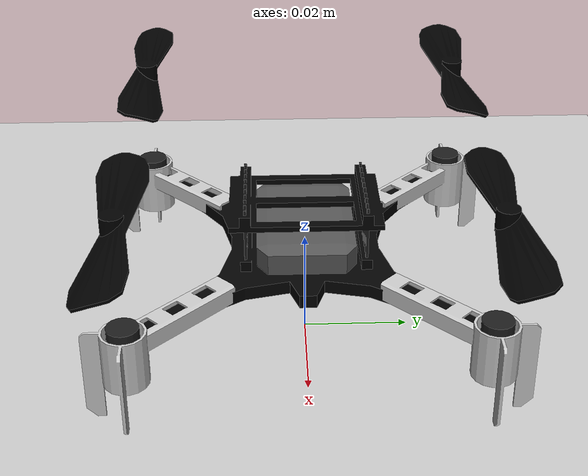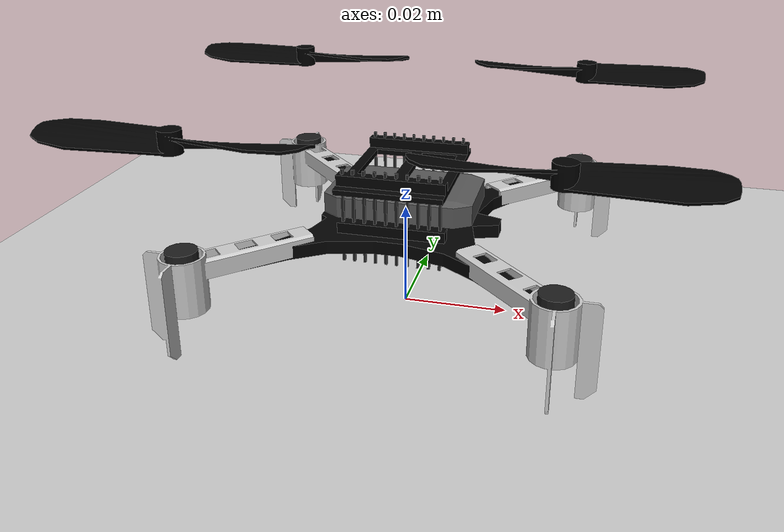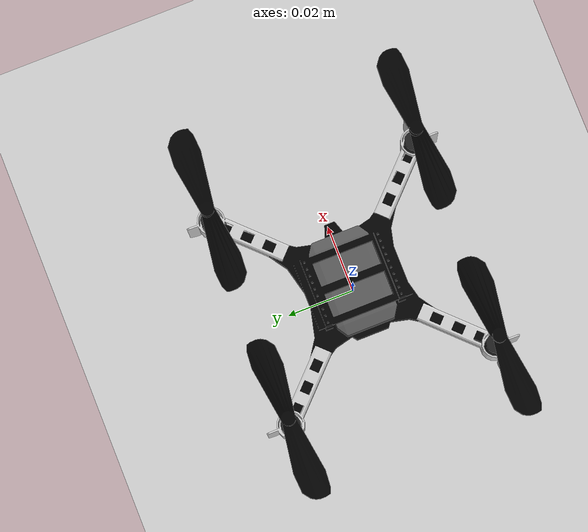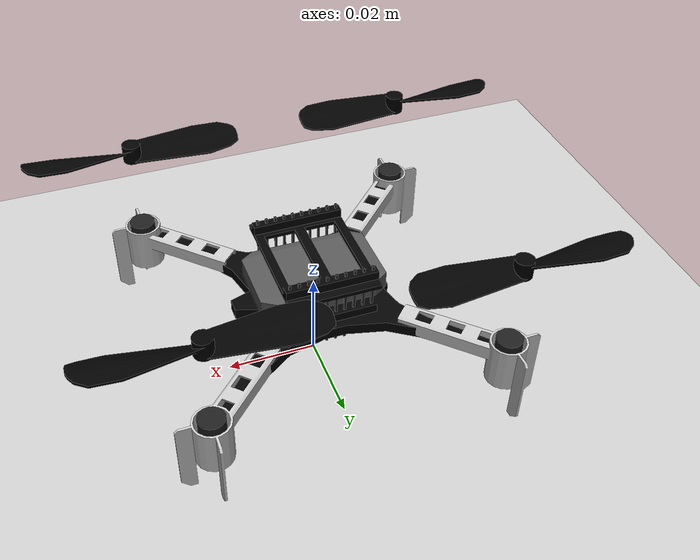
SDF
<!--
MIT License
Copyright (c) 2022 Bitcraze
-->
<?xml version="1.0"?>

<sdf version="1.6">
  <world name="crazyflie_world">
    <physics name="1ms" type="ignored">
      <max_step_size>0.001</max_step_size>
      <real_time_factor>1.0</real_time_factor>
    </physics>
    <plugin
      filename="gz-sim-physics-system"
      name="gz::sim::systems::Physics">
    </plugin>
    <plugin
      filename="gz-sim-user-commands-system"
      name="gz::sim::systems::UserCommands">
    </plugin>
    <plugin
      filename="gz-sim-scene-broadcaster-system"
      name="gz::sim::systems::SceneBroadcaster">
    </plugin>
    <plugin
      filename="gz-sim-contact-system"
      name="gz::sim::systems::Contact">
    </plugin>
    <plugin filename="gz-sim-imu-system"
      name="gz::sim::systems::Imu">
    </plugin>

    <light type="directional" name="sun">
      <cast_shadows>true</cast_shadows>
      <pose>0 0 10 0 0 0</pose>
      <diffuse>0.8 0.8 0.8 1</diffuse>
      <specular>0.2 0.2 0.2 1</specular>
      <attenuation>
        <range>1000</range>
        <constant>0.9</constant>
        <linear>0.01</linear>
        <quadratic>0.001</quadratic>
      </attenuation>
      <direction>-0.5 0.1 -0.9</direction>
    </light>

    <model name="ground_plane">
      <static>true</static>
      <link name="link">
        <collision name="collision">
          <geometry>
            <plane>
              <normal>0 0 1</normal>
              <size>100 100</size>
            </plane>
          </geometry>
        </collision>
        <visual name="visual">
          <geometry>
            <plane>
              <normal>0 0 1</normal>
              <size>100 100</size>
            </plane>
          </geometry>
          <material>
            <ambient>0.8 0.8 0.8 1</ambient>
            <diffuse>0.8 0.8 0.8 1</diffuse>
            <specular>0.8 0.8 0.8 1</specular>
          </material>
        </visual>
      </link>
    </model>

    <include>
      <uri>model://crazyflie</uri>
      <name>crazyflie</name>
      <pose>0 0 0.02 0 0 0</pose>

      <plugin
        filename="gz-sim-multicopter-control-system"
        name="gz::sim::systems::MulticopterVelocityControl">
        <robotNamespace>crazyflie</robotNamespace>
        <commandSubTopic>gazebo/command/twist</commandSubTopic>
        <enableSubTopic>enable</enableSubTopic>
        <comLinkName>crazyflie/body</comLinkName>
        <velocityGain>0.03 0.03 0.03</velocityGain>
        <attitudeGain>0.02 0.02 0.02</attitudeGain>
        <angularRateGain>0.005 0.005 0.005</angularRateGain>
        <maximumLinearAcceleration>2 2 2</maximumLinearAcceleration>

        <rotorConfiguration>
          <rotor>
            <jointName>crazyflie/m1_joint</jointName>
            <forceConstant>1.28192e-08</forceConstant>
            <momentConstant>0.016</momentConstant>
            <direction>1</direction>
          </rotor>
          <rotor>
            <jointName>crazyflie/m2_joint</jointName>
            <forceConstant>1.28192e-08</forceConstant>
            <momentConstant>0.016</momentConstant>
            <direction>1</direction>
          </rotor>
          <rotor>
            <jointName>crazyflie/m3_joint</jointName>
            <forceConstant>1.28192e-08</forceConstant>
            <momentConstant>0.016</momentConstant>
            <direction>-1</direction>
          </rotor>
          <rotor>
            <jointName>crazyflie/m4_joint</jointName>
            <forceConstant>1.28192e-08</forceConstant>
            <momentConstant>0.016</momentConstant>
            <direction>-1</direction>
          </rotor>
        </rotorConfiguration>
      </plugin>
    </include>
  </world>
</sdf>

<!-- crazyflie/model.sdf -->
<sdf version="1.8">
  <model name="crazyflie">
    <pose>0 0 0.0 0 0 3.14</pose>
    <link name="crazyflie/body">
      <inertial>
        <pose>0 0 0 0 0 0</pose>
        <mass>0.025</mass>
        <inertia>
          <ixx>0.000016572</ixx>
          <ixy>0.00</ixy>
          <ixz>0.00</ixz>
          <iyy>0.000016656</iyy>
          <iyz>0.00000</iyz>
          <izz>0.000029262</izz>
        </inertia>
      </inertial>
      <collision name="crazyflie/body_collision">
        <pose>0 0 0 0 0 0</pose>
        <geometry>
          <box>
            <size>0.10 0.10 0.03</size>
          </box>
        </geometry>
      </collision>
      <visual name="crazyflie/body_visual">
        <pose>0 0 0 0 0 0</pose>
        <geometry>
          <mesh>
            <scale>1 1 1</scale>
            <uri>../../../meshes/collada_files/cf2_assembly.dae</uri>
          </mesh>
        </geometry>
      </visual>
      <sensor name="imu_sensor" type="imu">
        <pose degrees="true">0 0 0 180 0 0</pose>
        <always_on>1</always_on>
        <update_rate>1000.0</update_rate>
      </sensor>
    </link>
    <link name="crazyflie/m1_prop">
      <pose>0.031 -0.031 0.021 0 0 0</pose>
      <inertial>
        <pose>0 0 0 0 0 0</pose>
        <mass>0.0008</mass>
        <inertia>
          <ixx>8.33333E-09</ixx>
          <iyy>1.08333E-07</iyy>
          <izz>1.13333E-07</izz>
          <ixy>0</ixy>
          <ixz>0</ixz>
          <iyz>0</iyz>
        </inertia>
      </inertial>
      <collision name="collision">
        <pose>0 0 0 0 0 0</pose>
        <geometry>
          <mesh>
            <scale>1 1 1</scale>
            <uri>../../../meshes/collada_files/ccw_prop.dae</uri>
          </mesh>
        </geometry>
      </collision>
      <visual name="crazyflie/m1_visual">
        <pose>0 0 0 0 0 0</pose>
        <geometry>
          <mesh>
            <scale>1 1 1</scale>
            <uri>../../../meshes/collada_files/ccw_prop.dae</uri>
          </mesh>
        </geometry>
      </visual>
    </link>
    <link name="crazyflie/m2_prop">
      <pose>-0.031 0.031 0.021 0 0 0</pose>
      <inertial>
        <pose>0 0 0 0 -0 0</pose>
        <mass>0.0008</mass>
        <inertia>
          <ixx>8.33333E-09</ixx>
          <iyy>1.08333E-07</iyy>
          <izz>1.13333E-07</izz>
          <ixy>0</ixy>
          <ixz>0</ixz>
          <iyz>0</iyz>
        </inertia>
      </inertial>
      <collision name="collision">
        <pose>0 0 0 0 0 0</pose>
        <geometry>
          <mesh>
            <scale>1 1 1</scale>
            <uri>../../../meshes/collada_files/cw_prop.dae</uri>
          </mesh>
        </geometry>
      </collision>
      <visual name="crazyflie/m2_visual">
        <pose>0 0 0 0 0 0</pose>
        <geometry>
          <mesh>
            <scale>1 1 1</scale>
            <uri>../../../meshes/collada_files/cw_prop.dae</uri>
          </mesh>
        </geometry>
      </visual>
    </link>
    <link name="crazyflie/m3_prop">
      <pose>0.031 0.031 0.021 0 0 0</pose>
      <inertial>
        <pose>0 0 0 0 0 0</pose>
        <mass>0.0008</mass>
        <inertia>
          <ixx>8.33333E-09</ixx>
          <iyy>1.08333E-07</iyy>
          <izz>1.13333E-07</izz>
          <ixy>0</ixy>
          <ixz>0</ixz>
          <iyz>0</iyz>
        </inertia>
      </inertial>
      <collision name="collision">
        <pose>0 0 0 0 0 0</pose>
        <geometry>
          <mesh>
            <scale>1 1 1</scale>
            <uri>../../../meshes/collada_files/ccw_prop.dae</uri>
          </mesh>
        </geometry>
      </collision>
      <visual name="crazyflie/m3_visual">
        <pose>0 0 0 0 0 0</pose>
        <geometry>
          <mesh>
            <scale>1 1 1</scale>
            <uri>../../../meshes/collada_files/ccw_prop.dae</uri>
          </mesh>
        </geometry>
      </visual>
    </link>
    <link name="crazyflie/m4_prop">
      <pose>-0.031 -0.031 0.021 0 0 0</pose>
      <inertial>
        <pose>0 0 0 0 0 0</pose>
        <mass>0.0008</mass>
        <inertia>
          <ixx>8.33333E-09</ixx>
          <iyy>1.08333E-07</iyy>
          <izz>1.13333E-07</izz>
          <ixy>0</ixy>
          <ixz>0</ixz>
          <iyz>0</iyz>
        </inertia>
      </inertial>
      <collision name="collision">
        <pose>0 0 0 0 0 0</pose>
        <geometry>
          <mesh>
            <scale>1 1 1</scale>
            <uri>../../../meshes/collada_files/cw_prop.dae</uri>
          </mesh>
        </geometry>
      </collision>
      <visual name="crazyflie/m4_visual">
        <pose>0 0 0 0 0 0</pose>
        <geometry>
          <mesh>
            <scale>1 1 1</scale>
            <uri>../../../meshes/collada_files/cw_prop.dae</uri>
          </mesh>
        </geometry>
      </visual>
    </link>
    <joint name="crazyflie/m1_joint" type="revolute">
      <child>crazyflie/m1_prop</child>
      <parent>crazyflie/body</parent>
      <axis>
        <xyz>0 0 1</xyz>
        <limit>
          <lower>-1e+16</lower>
          <upper>1e+16</upper>
        </limit>
        <dynamics>
          <damping>0.004</damping>
        </dynamics>
      </axis>
    </joint>
    <joint name="crazyflie/m2_joint" type="revolute">
      <child>crazyflie/m2_prop</child>
      <parent>crazyflie/body</parent>
      <axis>
        <xyz>0 0 1</xyz>
        <limit>
          <lower>-1e+16</lower>
          <upper>1e+16</upper>
        </limit>
        <dynamics>
          <damping>0.004</damping>
        </dynamics>
      </axis>
    </joint>
    <joint name="crazyflie/m3_joint" type="revolute">
      <child>crazyflie/m3_prop</child>
      <parent>crazyflie/body</parent>
      <axis>
        <xyz>0 0 1</xyz>
        <limit>
          <lower>-1e+16</lower>
          <upper>1e+16</upper>
        </limit>
        <dynamics>
          <damping>0.004</damping>
        </dynamics>
      </axis>
    </joint>
    <joint name="crazyflie/m4_joint" type="revolute">
      <child>crazyflie/m4_prop</child>
      <parent>crazyflie/body</parent>
      <axis>
        <xyz>0 0 1</xyz>
        <limit>
          <lower>-1e+16</lower>
          <upper>1e+16</upper>
        </limit>
        <dynamics>
          <damping>0.004</damping>
        </dynamics>
      </axis>
    </joint>
    <plugin
      filename="gz-sim-multicopter-motor-model-system"
      name="gz::sim::systems::MulticopterMotorModel">
      <robotNamespace>crazyflie</robotNamespace>
      <jointName>crazyflie/m1_joint</jointName>
      <linkName>crazyflie/m1_prop</linkName>
      <turningDirection>ccw</turningDirection>
      <timeConstantUp>0.0125</timeConstantUp>
      <timeConstantDown>0.025</timeConstantDown>
      <maxRotVelocity>2618</maxRotVelocity>
      <motorConstant>1.28192e-08</motorConstant>
      <momentConstant>0.016</momentConstant>
      <commandSubTopic>gazebo/command/motor_speed</commandSubTopic>
      <actuator_number>0</actuator_number>
      <rotorDragCoefficient>8.06428e-05</rotorDragCoefficient>
      <rollingMomentCoefficient>1.0e-6</rollingMomentCoefficient>
      <motorSpeedPubTopic>motor_speed/0</motorSpeedPubTopic>
      <rotorVelocitySlowdownSim>10</rotorVelocitySlowdownSim>
      <motorType>velocity</motorType>
    </plugin>
    <plugin
      filename="gz-sim-multicopter-motor-model-system"
      name="gz::sim::systems::MulticopterMotorModel">
      <robotNamespace>crazyflie</robotNamespace>
      <jointName>crazyflie/m2_joint</jointName>
      <linkName>crazyflie/m2_prop</linkName>
      <turningDirection>ccw</turningDirection>
      <timeConstantUp>0.0125</timeConstantUp>
      <timeConstantDown>0.025</timeConstantDown>
      <maxRotVelocity>2618</maxRotVelocity>
      <motorConstant>1.28192e-08</motorConstant>
      <momentConstant>0.016</momentConstant>
      <commandSubTopic>gazebo/command/motor_speed</commandSubTopic>
      <actuator_number>1</actuator_number>
      <rotorDragCoefficient>8.06428e-05</rotorDragCoefficient>
      <rollingMomentCoefficient>1.0e-6</rollingMomentCoefficient>
      <motorSpeedPubTopic>motor_speed/1</motorSpeedPubTopic>
      <rotorVelocitySlowdownSim>10</rotorVelocitySlowdownSim>
      <motorType>velocity</motorType>
    </plugin>
    <plugin
      filename="gz-sim-multicopter-motor-model-system"
      name="gz::sim::systems::MulticopterMotorModel">
      <robotNamespace>crazyflie</robotNamespace>
      <jointName>crazyflie/m3_joint</jointName>
      <linkName>crazyflie/m3_prop</linkName>
      <turningDirection>cw</turningDirection>
      <timeConstantUp>0.0125</timeConstantUp>
      <timeConstantDown>0.025</timeConstantDown>
      <maxRotVelocity>2618</maxRotVelocity>
      <motorConstant>1.28192e-08</motorConstant>
      <momentConstant>0.016</momentConstant>
      <commandSubTopic>gazebo/command/motor_speed</commandSubTopic>
      <actuator_number>2</actuator_number>
      <rotorDragCoefficient>8.06428e-05</rotorDragCoefficient>
      <rollingMomentCoefficient>1.0e-6</rollingMomentCoefficient>
      <motorSpeedPubTopic>motor_speed/2</motorSpeedPubTopic>
      <rotorVelocitySlowdownSim>10</rotorVelocitySlowdownSim>
      <motorType>velocity</motorType>
    </plugin>
    <plugin
      filename="gz-sim-multicopter-motor-model-system"
      name="gz::sim::systems::MulticopterMotorModel">
      <robotNamespace>crazyflie</robotNamespace>
      <jointName>crazyflie/m4_joint</jointName>
      <linkName>crazyflie/m4_prop</linkName>
      <turningDirection>cw</turningDirection>
      <timeConstantUp>0.0125</timeConstantUp>
      <timeConstantDown>0.025</timeConstantDown>
      <maxRotVelocity>2618</maxRotVelocity>
      <motorConstant>1.28192e-08</motorConstant>
      <momentConstant>0.016</momentConstant>
      <commandSubTopic>gazebo/command/motor_speed</commandSubTopic>
      <actuator_number>3</actuator_number>
      <rotorDragCoefficient>8.06428e-05</rotorDragCoefficient>
      <rollingMomentCoefficient>1.0e-6</rollingMomentCoefficient>
      <motorSpeedPubTopic>motor_speed/3</motorSpeedPubTopic>
      <rotorVelocitySlowdownSim>10</rotorVelocitySlowdownSim>
      <motorType>velocity</motorType>
    </plugin>
    <plugin
      filename="gz-sim-odometry-publisher-system"
      name="gz::sim::systems::OdometryPublisher">
      <dimensions>3</dimensions>
    </plugin>
  </model>
</sdf>
